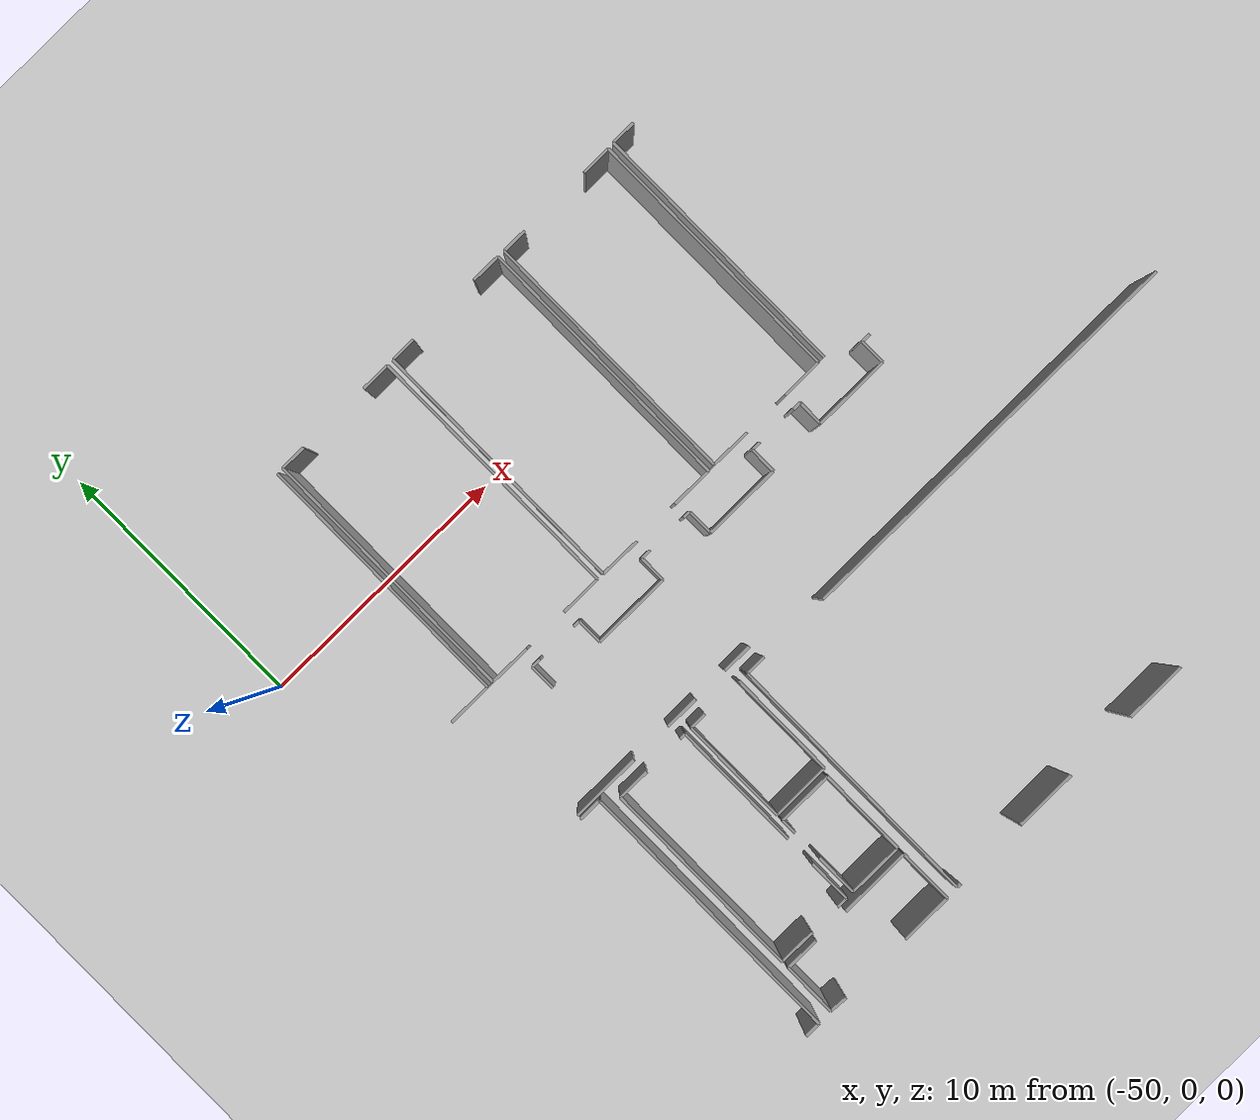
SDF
<sdf version="1.6">
 <world name="default">
  <model name="ground_plane">
   <static>1</static>
   <link name="link">
    <collision name="collision">
     <geometry><plane><normal>0 0 1</normal><size>100 100</size></plane></geometry>
     <surface><friction><ode><mu>100</mu><mu2>50</mu2></ode></friction></surface>
    </collision>
    <visual name="visual">
     <cast_shadows>0</cast_shadows>
     <geometry><plane><normal>0 0 1</normal><size>100 100</size></plane></geometry>
     <material>
      <script><uri>file://media/materials/scripts/gazebo.material</uri><name>Gazebo/Grey</name></script>
     </material>
    </visual>
   </link>
  </model>
  <model name="50055640">
   <static>1</static>
   <link name="Wall_51">
    <collision name="Wall_51_Collision">
     <geometry><box><size>0.990151784355 0.1 2.5</size></box></geometry>
     <pose>0.495075892177 0 1.25 0 0 0</pose>
    </collision>
    <visual name="Wall_51_Visual">
     <pose>0.495075892177 0 1.25 0 0 0</pose>
     <geometry><box><size>0.990151784355 0.1 2.5</size></box></geometry>
     <material>
      <script><uri>file://media/materials/scripts/gazebo.material</uri><name>Gazebo/Grey</name></script>
      <ambient>1 1 1 1</ambient>
     </material>
    </visual>
    <pose>27.3272754962 -27.5340626428 0 0 0 1.57079632679</pose>
   </link>
   <link name="Wall_52">
    <collision name="Wall_52_Collision">
     <geometry><box><size>0.367150616783 0.1 2.5</size></box></geometry>
     <pose>0.183575308391 0 1.25 0 0 0</pose>
    </collision>
    <visual name="Wall_52_Visual">
     <pose>0.183575308391 0 1.25 0 0 0</pose>
     <geometry><box><size>0.367150616783 0.1 2.5</size></box></geometry>
     <material>
      <script><uri>file://media/materials/scripts/gazebo.material</uri><name>Gazebo/Grey</name></script>
      <ambient>1 1 1 1</ambient>
     </material>
    </visual>
    <pose>27.3272754962 -26.5439108584 0 0 0 0.0</pose>
   </link>
   <link name="Wall_53">
    <collision name="Wall_53_Collision">
     <geometry><box><size>0.267018630387 0.1 2.5</size></box></geometry>
     <pose>0.133509315194 0 1.25 0 0 0</pose>
    </collision>
    <visual name="Wall_53_Visual">
     <pose>0.133509315194 0 1.25 0 0 0</pose>
     <geometry><box><size>0.267018630387 0.1 2.5</size></box></geometry>
     <material>
      <script><uri>file://media/materials/scripts/gazebo.material</uri><name>Gazebo/Grey</name></script>
      <ambient>1 1 1 1</ambient>
     </material>
    </visual>
    <pose>29.2631605665 -26.5439108584 0 0 0 0.0</pose>
   </link>
   <link name="Wall_54">
    <collision name="Wall_54_Collision">
     <geometry><box><size>0.984694654551 0.1 2.5</size></box></geometry>
     <pose>0.492347327275 0 1.25 0 0 0</pose>
    </collision>
    <visual name="Wall_54_Visual">
     <pose>0.492347327275 0 1.25 0 0 0</pose>
     <geometry><box><size>0.984694654551 0.1 2.5</size></box></geometry>
     <material>
      <script><uri>file://media/materials/scripts/gazebo.material</uri><name>Gazebo/Grey</name></script>
      <ambient>1 1 1 1</ambient>
     </material>
    </visual>
    <pose>29.5301791969 -26.5439108584 0 0 0 -1.57079632679</pose>
   </link>
   <link name="Wall_55">
    <collision name="Wall_55_Collision">
     <geometry><box><size>2.94570790395 0.1 2.5</size></box></geometry>
     <pose>1.47285395198 0 1.25 0 0 0</pose>
    </collision>
    <visual name="Wall_55_Visual">
     <pose>1.47285395198 0 1.25 0 0 0</pose>
     <geometry><box><size>2.94570790395 0.1 2.5</size></box></geometry>
     <material>
      <script><uri>file://media/materials/scripts/gazebo.material</uri><name>Gazebo/Grey</name></script>
      <ambient>1 1 1 1</ambient>
     </material>
    </visual>
    <pose>29.5301791969 -27.528605513 0 0 0 0.0</pose>
   </link>
   <link name="Wall_56">
    <collision name="Wall_56_Collision">
     <geometry><box><size>1.00131986395 0.1 2.5</size></box></geometry>
     <pose>0.500659931976 0 1.25 0 0 0</pose>
    </collision>
    <visual name="Wall_56_Visual">
     <pose>0.500659931976 0 1.25 0 0 0</pose>
     <geometry><box><size>1.00131986395 0.1 2.5</size></box></geometry>
     <material>
      <script><uri>file://media/materials/scripts/gazebo.material</uri><name>Gazebo/Grey</name></script>
      <ambient>1 1 1 1</ambient>
     </material>
    </visual>
    <pose>32.4758871009 -27.528605513 0 0 0 1.57079632679</pose>
   </link>
   <link name="Wall_57">
    <collision name="Wall_57_Collision">
     <geometry><box><size>0.383775826184 0.1 2.5</size></box></geometry>
     <pose>0.191887913092 0 1.25 0 0 0</pose>
    </collision>
    <visual name="Wall_57_Visual">
     <pose>0.191887913092 0 1.25 0 0 0</pose>
     <geometry><box><size>0.383775826184 0.1 2.5</size></box></geometry>
     <material>
      <script><uri>file://media/materials/scripts/gazebo.material</uri><name>Gazebo/Grey</name></script>
      <ambient>1 1 1 1</ambient>
     </material>
    </visual>
    <pose>32.4758871009 -26.527285649 0 0 0 0.0</pose>
   </link>
   <link name="Wall_58">
    <collision name="Wall_58_Collision">
     <geometry><box><size>0.286816589675 0.1 2.5</size></box></geometry>
     <pose>0.143408294837 0 1.25 0 0 0</pose>
    </collision>
    <visual name="Wall_58_Visual">
     <pose>0.143408294837 0 1.25 0 0 0</pose>
     <geometry><box><size>0.286816589675 0.1 2.5</size></box></geometry>
     <material>
      <script><uri>file://media/materials/scripts/gazebo.material</uri><name>Gazebo/Grey</name></script>
      <ambient>1 1 1 1</ambient>
     </material>
    </visual>
    <pose>34.4214173308 -26.527285649 0 0 0 0.0</pose>
   </link>
   <link name="Wall_59">
    <collision name="Wall_59_Collision">
     <geometry><box><size>0.995735824154 0.1 2.5</size></box></geometry>
     <pose>0.497867912077 0 1.25 0 0 0</pose>
    </collision>
    <visual name="Wall_59_Visual">
     <pose>0.497867912077 0 1.25 0 0 0</pose>
     <geometry><box><size>0.995735824154 0.1 2.5</size></box></geometry>
     <material>
      <script><uri>file://media/materials/scripts/gazebo.material</uri><name>Gazebo/Grey</name></script>
      <ambient>1 1 1 1</ambient>
     </material>
    </visual>
    <pose>34.7082339205 -26.527285649 0 0 0 -1.57079632679</pose>
   </link>
   <link name="Wall_60">
    <collision name="Wall_60_Collision">
     <geometry><box><size>2.93555510432 0.1 2.5</size></box></geometry>
     <pose>1.46777755216 0 1.25 0 0 0</pose>
    </collision>
    <visual name="Wall_60_Visual">
     <pose>1.46777755216 0 1.25 0 0 0</pose>
     <geometry><box><size>2.93555510432 0.1 2.5</size></box></geometry>
     <material>
      <script><uri>file://media/materials/scripts/gazebo.material</uri><name>Gazebo/Grey</name></script>
      <ambient>1 1 1 1</ambient>
     </material>
    </visual>
    <pose>34.7082339205 -27.5230214732 0 0 0 0.0</pose>
   </link>
   <link name="Wall_61">
    <collision name="Wall_61_Collision">
     <geometry><box><size>1.00423879385 0.1 2.5</size></box></geometry>
     <pose>0.502119396924 0 1.25 0 0 0</pose>
    </collision>
    <visual name="Wall_61_Visual">
     <pose>0.502119396924 0 1.25 0 0 0</pose>
     <geometry><box><size>1.00423879385 0.1 2.5</size></box></geometry>
     <material>
      <script><uri>file://media/materials/scripts/gazebo.material</uri><name>Gazebo/Grey</name></script>
      <ambient>1 1 1 1</ambient>
     </material>
    </visual>
    <pose>37.6437890248 -27.5230214732 0 0 0 1.57079632679</pose>
   </link>
   <link name="Wall_62">
    <collision name="Wall_62_Collision">
     <geometry><box><size>0.353190517285 0.1 2.5</size></box></geometry>
     <pose>0.176595258643 0 1.25 0 0 0</pose>
    </collision>
    <visual name="Wall_62_Visual">
     <pose>0.176595258643 0 1.25 0 0 0</pose>
     <geometry><box><size>0.353190517285 0.1 2.5</size></box></geometry>
     <material>
      <script><uri>file://media/materials/scripts/gazebo.material</uri><name>Gazebo/Grey</name></script>
      <ambient>1 1 1 1</ambient>
     </material>
    </visual>
    <pose>37.6437890248 -26.5187826793 0 0 0 0.0</pose>
   </link>
   <link name="Wall_63">
    <collision name="Wall_63_Collision">
     <geometry><box><size>0.304583989035 0.1 2.5</size></box></geometry>
     <pose>0.152291994517 0 1.25 0 0 0</pose>
    </collision>
    <visual name="Wall_63_Visual">
     <pose>0.152291994517 0 1.25 0 0 0</pose>
     <geometry><box><size>0.304583989035 0.1 2.5</size></box></geometry>
     <material>
      <script><uri>file://media/materials/scripts/gazebo.material</uri><name>Gazebo/Grey</name></script>
      <ambient>1 1 1 1</ambient>
     </material>
    </visual>
    <pose>39.5761206153 -26.5187826793 0 0 0 0.0</pose>
   </link>
   <link name="Wall_64">
    <collision name="Wall_64_Collision">
     <geometry><box><size>0.974414944921 0.1 2.5</size></box></geometry>
     <pose>0.487207472461 0 1.25 0 0 0</pose>
    </collision>
    <visual name="Wall_64_Visual">
     <pose>0.487207472461 0 1.25 0 0 0</pose>
     <geometry><box><size>0.974414944921 0.1 2.5</size></box></geometry>
     <material>
      <script><uri>file://media/materials/scripts/gazebo.material</uri><name>Gazebo/Grey</name></script>
      <ambient>1 1 1 1</ambient>
     </material>
    </visual>
    <pose>39.8807046043 -26.5187826793 0 0 0 -1.57079632679</pose>
   </link>
   <link name="Wall_65">
    <collision name="Wall_65_Collision">
     <geometry><box><size>2.90623889538 0.1 2.5</size></box></geometry>
     <pose>1.45311944769 0 1.25 0 0 0</pose>
    </collision>
    <visual name="Wall_65_Visual">
     <pose>1.45311944769 0 1.25 0 0 0</pose>
     <geometry><box><size>2.90623889538 0.1 2.5</size></box></geometry>
     <material>
      <script><uri>file://media/materials/scripts/gazebo.material</uri><name>Gazebo/Grey</name></script>
      <ambient>1 1 1 1</ambient>
     </material>
    </visual>
    <pose>39.8807046043 -27.4931976242 0 0 0 0.0</pose>
   </link>
   <link name="Wall_66">
    <collision name="Wall_66_Collision">
     <geometry><box><size>0.977206964821 0.1 2.5</size></box></geometry>
     <pose>0.48860348241 0 1.25 0 0 0</pose>
    </collision>
    <visual name="Wall_66_Visual">
     <pose>0.48860348241 0 1.25 0 0 0</pose>
     <geometry><box><size>0.977206964821 0.1 2.5</size></box></geometry>
     <material>
      <script><uri>file://media/materials/scripts/gazebo.material</uri><name>Gazebo/Grey</name></script>
      <ambient>1 1 1 1</ambient>
     </material>
    </visual>
    <pose>42.7869434997 -27.4931976242 0 0 0 1.57079632679</pose>
   </link>
   <link name="Wall_67">
    <collision name="Wall_67_Collision">
     <geometry><box><size>0.355347987207 0.1 2.5</size></box></geometry>
     <pose>0.177673993604 0 1.25 0 0 0</pose>
    </collision>
    <visual name="Wall_67_Visual">
     <pose>0.177673993604 0 1.25 0 0 0</pose>
     <geometry><box><size>0.355347987207 0.1 2.5</size></box></geometry>
     <material>
      <script><uri>file://media/materials/scripts/gazebo.material</uri><name>Gazebo/Grey</name></script>
      <ambient>1 1 1 1</ambient>
     </material>
    </visual>
    <pose>42.7869434997 -26.5159906594 0 0 0 0.0</pose>
   </link>
   <link name="Wall_77">
    <collision name="Wall_77_Collision">
     <geometry><box><size>1.14218995888 0.1 2.5</size></box></geometry>
     <pose>0.571094979441 0 1.25 0 0 0</pose>
    </collision>
    <visual name="Wall_77_Visual">
     <pose>0.571094979441 0 1.25 0 0 0</pose>
     <geometry><box><size>1.14218995888 0.1 2.5</size></box></geometry>
     <material>
      <script><uri>file://media/materials/scripts/gazebo.material</uri><name>Gazebo/Grey</name></script>
      <ambient>1 1 1 1</ambient>
     </material>
    </visual>
    <pose>32.9768008528 -31.1334839332 0 0 0 3.14159265359</pose>
   </link>
   <link name="Wall_78">
    <collision name="Wall_78_Collision">
     <geometry><box><size>1.29118229352 0.1 2.5</size></box></geometry>
     <pose>0.645591146759 0 1.25 0 0 0</pose>
    </collision>
    <visual name="Wall_78_Visual">
     <pose>0.645591146759 0 1.25 0 0 0</pose>
     <geometry><box><size>1.29118229352 0.1 2.5</size></box></geometry>
     <material>
      <script><uri>file://media/materials/scripts/gazebo.material</uri><name>Gazebo/Grey</name></script>
      <ambient>1 1 1 1</ambient>
     </material>
    </visual>
    <pose>30.4595410935 -31.1334839332 0 0 0 3.14159265359</pose>
   </link>
   <link name="Wall_79">
    <collision name="Wall_79_Collision">
     <geometry><box><size>2.62932128534 0.1 2.5</size></box></geometry>
     <pose>1.31466064267 0 1.25 0 0 0</pose>
    </collision>
    <visual name="Wall_79_Visual">
     <pose>1.31466064267 0 1.25 0 0 0</pose>
     <geometry><box><size>2.62932128534 0.1 2.5</size></box></geometry>
     <material>
      <script><uri>file://media/materials/scripts/gazebo.material</uri><name>Gazebo/Grey</name></script>
      <ambient>1 1 1 1</ambient>
     </material>
    </visual>
    <pose>27.5696735875 -31.1334839332 0 0 0 3.14159265359</pose>
   </link>
   <link name="Wall_91">
    <collision name="Wall_91_Collision">
     <geometry><box><size>9.99809635007 0.1 2.5</size></box></geometry>
     <pose>4.99904817503 0 1.25 0 0 0</pose>
    </collision>
    <visual name="Wall_91_Visual">
     <pose>4.99904817503 0 1.25 0 0 0</pose>
     <geometry><box><size>9.99809635007 0.1 2.5</size></box></geometry>
     <material>
      <script><uri>file://media/materials/scripts/gazebo.material</uri><name>Gazebo/Grey</name></script>
      <ambient>1 1 1 1</ambient>
     </material>
    </visual>
    <pose>25.7954718514 -15.9747195289 0 0 0 -1.57079632679</pose>
   </link>
   <link name="Wall_92">
    <collision name="Wall_92_Collision">
     <geometry><box><size>1.67571957967 0.1 2.5</size></box></geometry>
     <pose>0.837859789837 0 1.25 0 0 0</pose>
    </collision>
    <visual name="Wall_92_Visual">
     <pose>0.837859789837 0 1.25 0 0 0</pose>
     <geometry><box><size>1.67571957967 0.1 2.5</size></box></geometry>
     <material>
      <script><uri>file://media/materials/scripts/gazebo.material</uri><name>Gazebo/Grey</name></script>
      <ambient>1 1 1 1</ambient>
     </material>
    </visual>
    <pose>25.7954718514 -25.972815879 0 0 0 3.14159265359</pose>
   </link>
   <link name="Wall_94">
    <collision name="Wall_94_Collision">
     <geometry><box><size>9.99847708005 0.1 2.5</size></box></geometry>
     <pose>4.99923854003 0 1.25 0 0 0</pose>
    </collision>
    <visual name="Wall_94_Visual">
     <pose>4.99923854003 0 1.25 0 0 0</pose>
     <geometry><box><size>9.99847708005 0.1 2.5</size></box></geometry>
     <material>
      <script><uri>file://media/materials/scripts/gazebo.material</uri><name>Gazebo/Grey</name></script>
      <ambient>1 1 1 1</ambient>
     </material>
    </visual>
    <pose>26.0453576324 -25.9773846388 0 0 0 1.57079632679</pose>
   </link>
   <link name="Wall_95">
    <collision name="Wall_95_Collision">
     <geometry><box><size>0.984313924565 0.1 2.5</size></box></geometry>
     <pose>0.492156962282 0 1.25 0 0 0</pose>
    </collision>
    <visual name="Wall_95_Visual">
     <pose>0.492156962282 0 1.25 0 0 0</pose>
     <geometry><box><size>0.984313924565 0.1 2.5</size></box></geometry>
     <material>
      <script><uri>file://media/materials/scripts/gazebo.material</uri><name>Gazebo/Grey</name></script>
      <ambient>1 1 1 1</ambient>
     </material>
    </visual>
    <pose>26.0453576324 -15.9789075588 0 0 0 0.0</pose>
   </link>
   <link name="Wall_96">
    <collision name="Wall_96_Collision">
     <geometry><box><size>1.11173155998 0.1 2.5</size></box></geometry>
     <pose>0.555865779989 0 1.25 0 0 0</pose>
    </collision>
    <visual name="Wall_96_Visual">
     <pose>0.555865779989 0 1.25 0 0 0</pose>
     <geometry><box><size>1.11173155998 0.1 2.5</size></box></geometry>
     <material>
      <script><uri>file://media/materials/scripts/gazebo.material</uri><name>Gazebo/Grey</name></script>
      <ambient>1 1 1 1</ambient>
     </material>
    </visual>
    <pose>29.8301944261 -15.9789075588 0 0 0 0.0</pose>
   </link>
   <link name="Wall_97">
    <collision name="Wall_97_Collision">
     <geometry><box><size>10.0 0.1 2.5</size></box></geometry>
     <pose>5.0 0 1.25 0 0 0</pose>
    </collision>
    <visual name="Wall_97_Visual">
     <pose>5.0 0 1.25 0 0 0</pose>
     <geometry><box><size>10.0 0.1 2.5</size></box></geometry>
     <material>
      <script><uri>file://media/materials/scripts/gazebo.material</uri><name>Gazebo/Grey</name></script>
      <ambient>1 1 1 1</ambient>
     </material>
    </visual>
    <pose>30.9419259861 -15.9789075588 0 0 0 -1.57079632679</pose>
   </link>
   <link name="Wall_98">
    <collision name="Wall_98_Collision">
     <geometry><box><size>1.55540890401 0.1 2.5</size></box></geometry>
     <pose>0.777704452003 0 1.25 0 0 0</pose>
    </collision>
    <visual name="Wall_98_Visual">
     <pose>0.777704452003 0 1.25 0 0 0</pose>
     <geometry><box><size>1.55540890401 0.1 2.5</size></box></geometry>
     <material>
      <script><uri>file://media/materials/scripts/gazebo.material</uri><name>Gazebo/Grey</name></script>
      <ambient>1 1 1 1</ambient>
     </material>
    </visual>
    <pose>30.9419259861 -25.9789075588 0 0 0 3.14159265359</pose>
   </link>
   <link name="Wall_99">
    <collision name="Wall_99_Collision">
     <geometry><box><size>1.5819338261 0.1 2.5</size></box></geometry>
     <pose>0.790966913052 0 1.25 0 0 0</pose>
    </collision>
    <visual name="Wall_99_Visual">
     <pose>0.790966913052 0 1.25 0 0 0</pose>
     <geometry><box><size>1.5819338261 0.1 2.5</size></box></geometry>
     <material>
      <script><uri>file://media/materials/scripts/gazebo.material</uri><name>Gazebo/Grey</name></script>
      <ambient>1 1 1 1</ambient>
     </material>
    </visual>
    <pose>27.6272907254 -25.9789075588 0 0 0 3.14062995834</pose>
   </link>
   <link name="Wall_100">
    <collision name="Wall_100_Collision">
     <geometry><box><size>10.0081222397 0.1 2.5</size></box></geometry>
     <pose>5.00406111985 0 1.25 0 0 0</pose>
    </collision>
    <visual name="Wall_100_Visual">
     <pose>5.00406111985 0 1.25 0 0 0</pose>
     <geometry><box><size>10.0081222397 0.1 2.5</size></box></geometry>
     <material>
      <script><uri>file://media/materials/scripts/gazebo.material</uri><name>Gazebo/Grey</name></script>
      <ambient>1 1 1 1</ambient>
     </material>
    </visual>
    <pose>31.1970150769 -25.9828417686 0 0 0 1.57079632679</pose>
   </link>
   <link name="Wall_101">
    <collision name="Wall_101_Collision">
     <geometry><box><size>0.976572414843 0.1 2.5</size></box></geometry>
     <pose>0.488286207422 0 1.25 0 0 0</pose>
    </collision>
    <visual name="Wall_101_Visual">
     <pose>0.488286207422 0 1.25 0 0 0</pose>
     <geometry><box><size>0.976572414843 0.1 2.5</size></box></geometry>
     <material>
      <script><uri>file://media/materials/scripts/gazebo.material</uri><name>Gazebo/Grey</name></script>
      <ambient>1 1 1 1</ambient>
     </material>
    </visual>
    <pose>31.1970150769 -15.9747195289 0 0 0 0.0</pose>
   </link>
   <link name="Wall_102">
    <collision name="Wall_102_Collision">
     <geometry><box><size>1.12467637951 0.1 2.5</size></box></geometry>
     <pose>0.562338189756 0 1.25 0 0 0</pose>
    </collision>
    <visual name="Wall_102_Visual">
     <pose>0.562338189756 0 1.25 0 0 0</pose>
     <geometry><box><size>1.12467637951 0.1 2.5</size></box></geometry>
     <material>
      <script><uri>file://media/materials/scripts/gazebo.material</uri><name>Gazebo/Grey</name></script>
      <ambient>1 1 1 1</ambient>
     </material>
    </visual>
    <pose>34.9889588304 -15.9747195289 0 0 0 0.0</pose>
   </link>
   <link name="Wall_103">
    <collision name="Wall_103_Collision">
     <geometry><box><size>10.026904919 0.1 2.5</size></box></geometry>
     <pose>5.01345245952 0 1.25 0 0 0</pose>
    </collision>
    <visual name="Wall_103_Visual">
     <pose>5.01345245952 0 1.25 0 0 0</pose>
     <geometry><box><size>10.026904919 0.1 2.5</size></box></geometry>
     <material>
      <script><uri>file://media/materials/scripts/gazebo.material</uri><name>Gazebo/Grey</name></script>
      <ambient>1 1 1 1</ambient>
     </material>
    </visual>
    <pose>36.1136352099 -15.9747195289 0 0 0 -1.57079632679</pose>
   </link>
   <link name="Wall_104">
    <collision name="Wall_104_Collision">
     <geometry><box><size>1.58497893294 0.1 2.5</size></box></geometry>
     <pose>0.79248946647 0 1.25 0 0 0</pose>
    </collision>
    <visual name="Wall_104_Visual">
     <pose>0.79248946647 0 1.25 0 0 0</pose>
     <geometry><box><size>1.58497893294 0.1 2.5</size></box></geometry>
     <material>
      <script><uri>file://media/materials/scripts/gazebo.material</uri><name>Gazebo/Grey</name></script>
      <ambient>1 1 1 1</ambient>
     </material>
    </visual>
    <pose>36.1136352099 -26.0016244479 0 0 0 3.14159265359</pose>
   </link>
   <link name="Wall_105">
    <collision name="Wall_105_Collision">
     <geometry><box><size>1.5619942469 0.1 2.5</size></box></geometry>
     <pose>0.780997123451 0 1.25 0 0 0</pose>
    </collision>
    <visual name="Wall_105_Visual">
     <pose>0.780997123451 0 1.25 0 0 0</pose>
     <geometry><box><size>1.5619942469 0.1 2.5</size></box></geometry>
     <material>
      <script><uri>file://media/materials/scripts/gazebo.material</uri><name>Gazebo/Grey</name></script>
      <ambient>1 1 1 1</ambient>
     </material>
    </visual>
    <pose>32.7588963907 -26.0016244479 0 0 0 3.1295675568</pose>
   </link>
   <link name="Wall_106">
    <collision name="Wall_106_Collision">
     <geometry><box><size>9.99479669019 0.1 2.5</size></box></geometry>
     <pose>4.99739834509 0 1.25 0 0 0</pose>
    </collision>
    <visual name="Wall_106_Visual">
     <pose>4.99739834509 0 1.25 0 0 0</pose>
     <geometry><box><size>9.99479669019 0.1 2.5</size></box></geometry>
     <material>
      <script><uri>file://media/materials/scripts/gazebo.material</uri><name>Gazebo/Grey</name></script>
      <ambient>1 1 1 1</ambient>
     </material>
    </visual>
    <pose>36.3906797299 -25.9829686786 0 0 0 1.57079632679</pose>
   </link>
   <link name="Wall_107">
    <collision name="Wall_107_Collision">
     <geometry><box><size>0.950048225798 0.1 2.5</size></box></geometry>
     <pose>0.475024112899 0 1.25 0 0 0</pose>
    </collision>
    <visual name="Wall_107_Visual">
     <pose>0.475024112899 0 1.25 0 0 0</pose>
     <geometry><box><size>0.950048225798 0.1 2.5</size></box></geometry>
     <material>
      <script><uri>file://media/materials/scripts/gazebo.material</uri><name>Gazebo/Grey</name></script>
      <ambient>1 1 1 1</ambient>
     </material>
    </visual>
    <pose>36.3906797299 -15.9881719884 0 0 0 0.0</pose>
   </link>
   <link name="Wall_108">
    <collision name="Wall_108_Collision">
     <geometry><box><size>1.12645311945 0.1 2.5</size></box></geometry>
     <pose>0.563226559724 0 1.25 0 0 0</pose>
    </collision>
    <visual name="Wall_108_Visual">
     <pose>0.563226559724 0 1.25 0 0 0</pose>
     <geometry><box><size>1.12645311945 0.1 2.5</size></box></geometry>
     <material>
      <script><uri>file://media/materials/scripts/gazebo.material</uri><name>Gazebo/Grey</name></script>
      <ambient>1 1 1 1</ambient>
     </material>
    </visual>
    <pose>40.1361744251 -15.9881719884 0 0 0 0.0</pose>
   </link>
   <link name="Wall_109">
    <collision name="Wall_109_Collision">
     <geometry><box><size>10.0 0.1 2.5</size></box></geometry>
     <pose>5.0 0 1.25 0 0 0</pose>
    </collision>
    <visual name="Wall_109_Visual">
     <pose>5.0 0 1.25 0 0 0</pose>
     <geometry><box><size>10.0 0.1 2.5</size></box></geometry>
     <material>
      <script><uri>file://media/materials/scripts/gazebo.material</uri><name>Gazebo/Grey</name></script>
      <ambient>1 1 1 1</ambient>
     </material>
    </visual>
    <pose>41.2626275445 -15.9881719884 0 0 0 -1.57079632679</pose>
   </link>
   <link name="Wall_110">
    <collision name="Wall_110_Collision">
     <geometry><box><size>1.56315041373 0.1 2.5</size></box></geometry>
     <pose>0.781575206863 0 1.25 0 0 0</pose>
    </collision>
    <visual name="Wall_110_Visual">
     <pose>0.781575206863 0 1.25 0 0 0</pose>
     <geometry><box><size>1.56315041373 0.1 2.5</size></box></geometry>
     <material>
      <script><uri>file://media/materials/scripts/gazebo.material</uri><name>Gazebo/Grey</name></script>
      <ambient>1 1 1 1</ambient>
     </material>
    </visual>
    <pose>41.2626275445 -25.9881719884 0 0 0 3.14159265359</pose>
   </link>
   <link name="Wall_111">
    <collision name="Wall_111_Collision">
     <geometry><box><size>1.54285358862 0.1 2.5</size></box></geometry>
     <pose>0.771426794312 0 1.25 0 0 0</pose>
    </collision>
    <visual name="Wall_111_Visual">
     <pose>0.771426794312 0 1.25 0 0 0</pose>
     <geometry><box><size>1.54285358862 0.1 2.5</size></box></geometry>
     <material>
      <script><uri>file://media/materials/scripts/gazebo.material</uri><name>Gazebo/Grey</name></script>
      <ambient>1 1 1 1</ambient>
     </material>
    </visual>
    <pose>37.9335245444 -25.9881719884 0 0 0 3.13822012381</pose>
   </link>
   <link name="Wall_112">
    <collision name="Wall_112_Collision">
     <geometry><box><size>10.0468297883 0.1 2.5</size></box></geometry>
     <pose>5.02341489416 0 1.25 0 0 0</pose>
    </collision>
    <visual name="Wall_112_Visual">
     <pose>5.02341489416 0 1.25 0 0 0</pose>
     <geometry><box><size>10.0468297883 0.1 2.5</size></box></geometry>
     <material>
      <script><uri>file://media/materials/scripts/gazebo.material</uri><name>Gazebo/Grey</name></script>
      <ambient>1 1 1 1</ambient>
     </material>
    </visual>
    <pose>41.5212701152 -26.0098735976 0 0 0 1.57079632679</pose>
   </link>
   <link name="Wall_113">
    <collision name="Wall_113_Collision">
     <geometry><box><size>0.951317325753 0.1 2.5</size></box></geometry>
     <pose>0.475658662876 0 1.25 0 0 0</pose>
    </collision>
    <visual name="Wall_113_Visual">
     <pose>0.475658662876 0 1.25 0 0 0</pose>
     <geometry><box><size>0.951317325753 0.1 2.5</size></box></geometry>
     <material>
      <script><uri>file://media/materials/scripts/gazebo.material</uri><name>Gazebo/Grey</name></script>
      <ambient>1 1 1 1</ambient>
     </material>
    </visual>
    <pose>41.5212701152 -15.9630438093 0 0 0 0.0</pose>
   </link>
   <link name="Wall_124">
    <collision name="Wall_124_Collision">
     <geometry><box><size>9.98299406061 0.1 2.5</size></box></geometry>
     <pose>4.99149703031 0 1.25 0 0 0</pose>
    </collision>
    <visual name="Wall_124_Visual">
     <pose>4.99149703031 0 1.25 0 0 0</pose>
     <geometry><box><size>9.98299406061 0.1 2.5</size></box></geometry>
     <material>
      <script><uri>file://media/materials/scripts/gazebo.material</uri><name>Gazebo/Grey</name></script>
      <ambient>1 1 1 1</ambient>
     </material>
    </visual>
    <pose>32.2914868775 -41.7148586223 0 0 0 1.57079632679</pose>
   </link>
   <link name="Wall_125">
    <collision name="Wall_125_Collision">
     <geometry><box><size>0.789126351591 0.1 2.5</size></box></geometry>
     <pose>0.394563175796 0 1.25 0 0 0</pose>
    </collision>
    <visual name="Wall_125_Visual">
     <pose>0.394563175796 0 1.25 0 0 0</pose>
     <geometry><box><size>0.789126351591 0.1 2.5</size></box></geometry>
     <material>
      <script><uri>file://media/materials/scripts/gazebo.material</uri><name>Gazebo/Grey</name></script>
      <ambient>1 1 1 1</ambient>
     </material>
    </visual>
    <pose>32.2914868775 -31.7318645617 0 0 0 0.0</pose>
   </link>
   <link name="Wall_126">
    <collision name="Wall_126_Collision">
     <geometry><box><size>15.5875932788 0.1 2.5</size></box></geometry>
     <pose>7.79379663942 0 1.25 0 0 0</pose>
    </collision>
    <visual name="Wall_126_Visual">
     <pose>7.79379663942 0 1.25 0 0 0</pose>
     <geometry><box><size>15.5875932788 0.1 2.5</size></box></geometry>
     <material>
      <script><uri>file://media/materials/scripts/gazebo.material</uri><name>Gazebo/Grey</name></script>
      <ambient>1 1 1 1</ambient>
     </material>
    </visual>
    <pose>35.8303721001 -31.7318645617 0 0 0 0.0</pose>
   </link>
   <link name="Wall_130">
    <collision name="Wall_130_Collision">
     <geometry><box><size>2.34834255546 0.1 2.5</size></box></geometry>
     <pose>1.17417127773 0 1.25 0 0 0</pose>
    </collision>
    <visual name="Wall_130_Visual">
     <pose>1.17417127773 0 1.25 0 0 0</pose>
     <geometry><box><size>2.34834255546 0.1 2.5</size></box></geometry>
     <material>
      <script><uri>file://media/materials/scripts/gazebo.material</uri><name>Gazebo/Grey</name></script>
      <ambient>1 1 1 1</ambient>
     </material>
    </visual>
    <pose>42.7470937611 -41.7194273821 0 0 0 3.14159265359</pose>
   </link>
   <link name="Wall_131">
    <collision name="Wall_131_Collision">
     <geometry><box><size>2.35938372506 0.1 2.5</size></box></geometry>
     <pose>1.17969186253 0 1.25 0 0 0</pose>
    </collision>
    <visual name="Wall_131_Visual">
     <pose>1.17969186253 0 1.25 0 0 0</pose>
     <geometry><box><size>2.35938372506 0.1 2.5</size></box></geometry>
     <material>
      <script><uri>file://media/materials/scripts/gazebo.material</uri><name>Gazebo/Grey</name></script>
      <ambient>1 1 1 1</ambient>
     </material>
    </visual>
    <pose>37.6060967562 -41.7194273821 0 0 0 3.14159265359</pose>
   </link>
   <link name="Wall_132">
    <collision name="Wall_132_Collision">
     <geometry><box><size>0.162635889507 0.1 2.5</size></box></geometry>
     <pose>0.0813179447536 0 1.25 0 0 0</pose>
    </collision>
    <visual name="Wall_132_Visual">
     <pose>0.0813179447536 0 1.25 0 0 0</pose>
     <geometry><box><size>0.162635889507 0.1 2.5</size></box></geometry>
     <material>
      <script><uri>file://media/materials/scripts/gazebo.material</uri><name>Gazebo/Grey</name></script>
      <ambient>1 1 1 1</ambient>
     </material>
    </visual>
    <pose>32.4540585817 -41.7194273821 0 0 0 3.11349700401</pose>
   </link>
   <link name="Wall_133">
    <collision name="Wall_133_Collision">
     <geometry><box><size>4.08523275293 0.1 2.5</size></box></geometry>
     <pose>2.04261637647 0 1.25 0 0 0</pose>
    </collision>
    <visual name="Wall_133_Visual">
     <pose>2.04261637647 0 1.25 0 0 0</pose>
     <geometry><box><size>4.08523275293 0.1 2.5</size></box></geometry>
     <material>
      <script><uri>file://media/materials/scripts/gazebo.material</uri><name>Gazebo/Grey</name></script>
      <ambient>1 1 1 1</ambient>
     </material>
    </visual>
    <pose>29.6847555713 -35.7912076755 0 0 0 1.57079632679</pose>
   </link>
   <link name="Wall_134">
    <collision name="Wall_134_Collision">
     <geometry><box><size>0.64584496675 0.1 2.5</size></box></geometry>
     <pose>0.322922483375 0 1.25 0 0 0</pose>
    </collision>
    <visual name="Wall_134_Visual">
     <pose>0.322922483375 0 1.25 0 0 0</pose>
     <geometry><box><size>0.64584496675 0.1 2.5</size></box></geometry>
     <material>
      <script><uri>file://media/materials/scripts/gazebo.material</uri><name>Gazebo/Grey</name></script>
      <ambient>1 1 1 1</ambient>
     </material>
    </visual>
    <pose>29.6847555713 -31.7059749226 0 0 0 0.0</pose>
   </link>
   <link name="Wall_135">
    <collision name="Wall_135_Collision">
     <geometry><box><size>4.07063810346 0.1 2.5</size></box></geometry>
     <pose>2.03531905173 0 1.25 0 0 0</pose>
    </collision>
    <visual name="Wall_135_Visual">
     <pose>2.03531905173 0 1.25 0 0 0</pose>
     <geometry><box><size>4.07063810346 0.1 2.5</size></box></geometry>
     <material>
      <script><uri>file://media/materials/scripts/gazebo.material</uri><name>Gazebo/Grey</name></script>
      <ambient>1 1 1 1</ambient>
     </material>
    </visual>
    <pose>31.916721661 -31.7059749226 0 0 0 -1.57079632679</pose>
   </link>
   <link name="Wall_136">
    <collision name="Wall_136_Collision">
     <geometry><box><size>2.23201380577 0.1 2.5</size></box></geometry>
     <pose>1.11600690288 0 1.25 0 0 0</pose>
    </collision>
    <visual name="Wall_136_Visual">
     <pose>1.11600690288 0 1.25 0 0 0</pose>
     <geometry><box><size>2.23201380577 0.1 2.5</size></box></geometry>
     <material>
      <script><uri>file://media/materials/scripts/gazebo.material</uri><name>Gazebo/Grey</name></script>
      <ambient>1 1 1 1</ambient>
     </material>
    </visual>
    <pose>31.916721661 -35.776613026 0 0 0 -3.13505382599</pose>
   </link>
   <link name="Wall_137">
    <collision name="Wall_137_Collision">
     <geometry><box><size>7.68427331337 0.1 2.5</size></box></geometry>
     <pose>3.84213665668 0 1.25 0 0 0</pose>
    </collision>
    <visual name="Wall_137_Visual">
     <pose>3.84213665668 0 1.25 0 0 0</pose>
     <geometry><box><size>7.68427331337 0.1 2.5</size></box></geometry>
     <material>
      <script><uri>file://media/materials/scripts/gazebo.material</uri><name>Gazebo/Grey</name></script>
      <ambient>1 1 1 1</ambient>
     </material>
    </visual>
    <pose>26.3759581705 -39.3974821057 0 0 0 1.57079632679</pose>
   </link>
   <link name="Wall_138">
    <collision name="Wall_138_Collision">
     <geometry><box><size>1.21909741611 0.1 2.5</size></box></geometry>
     <pose>0.609548708056 0 1.25 0 0 0</pose>
    </collision>
    <visual name="Wall_138_Visual">
     <pose>0.609548708056 0 1.25 0 0 0</pose>
     <geometry><box><size>1.21909741611 0.1 2.5</size></box></geometry>
     <material>
      <script><uri>file://media/materials/scripts/gazebo.material</uri><name>Gazebo/Grey</name></script>
      <ambient>1 1 1 1</ambient>
     </material>
    </visual>
    <pose>26.3759581705 -31.7132087923 0 0 0 0.0</pose>
   </link>
   <link name="Wall_139">
    <collision name="Wall_139_Collision">
     <geometry><box><size>0.233641301589 0.1 2.5</size></box></geometry>
     <pose>0.116820650794 0 1.25 0 0 0</pose>
    </collision>
    <visual name="Wall_139_Visual">
     <pose>0.116820650794 0 1.25 0 0 0</pose>
     <geometry><box><size>0.233641301589 0.1 2.5</size></box></geometry>
     <material>
      <script><uri>file://media/materials/scripts/gazebo.material</uri><name>Gazebo/Grey</name></script>
      <ambient>1 1 1 1</ambient>
     </material>
    </visual>
    <pose>29.1630285801 -31.7132087923 0 0 0 0.0</pose>
   </link>
   <link name="Wall_140">
    <collision name="Wall_140_Collision">
     <geometry><box><size>4.91179755318 0.1 2.5</size></box></geometry>
     <pose>2.45589877659 0 1.25 0 0 0</pose>
    </collision>
    <visual name="Wall_140_Visual">
     <pose>2.45589877659 0 1.25 0 0 0</pose>
     <geometry><box><size>4.91179755318 0.1 2.5</size></box></geometry>
     <material>
      <script><uri>file://media/materials/scripts/gazebo.material</uri><name>Gazebo/Grey</name></script>
      <ambient>1 1 1 1</ambient>
     </material>
    </visual>
    <pose>29.3966698817 -31.7132087923 0 0 0 -1.57079632679</pose>
   </link>
   <link name="Wall_141">
    <collision name="Wall_141_Collision">
     <geometry><box><size>1.61086857201 0.1 2.5</size></box></geometry>
     <pose>0.805434286004 0 1.25 0 0 0</pose>
    </collision>
    <visual name="Wall_141_Visual">
     <pose>0.805434286004 0 1.25 0 0 0</pose>
     <geometry><box><size>1.61086857201 0.1 2.5</size></box></geometry>
     <material>
      <script><uri>file://media/materials/scripts/gazebo.material</uri><name>Gazebo/Grey</name></script>
      <ambient>1 1 1 1</ambient>
     </material>
    </visual>
    <pose>29.3966698817 -37.7938474034 0 0 0 -1.57079632679</pose>
   </link>
   <link name="Wall_142">
    <collision name="Wall_142_Collision">
     <geometry><box><size>0.410934565206 0.1 2.5</size></box></geometry>
     <pose>0.205467282603 0 1.25 0 0 0</pose>
    </collision>
    <visual name="Wall_142_Visual">
     <pose>0.205467282603 0 1.25 0 0 0</pose>
     <geometry><box><size>0.410934565206 0.1 2.5</size></box></geometry>
     <material>
      <script><uri>file://media/materials/scripts/gazebo.material</uri><name>Gazebo/Grey</name></script>
      <ambient>1 1 1 1</ambient>
     </material>
    </visual>
    <pose>29.3966698817 -39.4047159754 0 0 0 3.14159265359</pose>
   </link>
   <link name="Wall_143">
    <collision name="Wall_143_Collision">
     <geometry><box><size>1.40453154815 0.1 2.5</size></box></geometry>
     <pose>0.702265774073 0 1.25 0 0 0</pose>
    </collision>
    <visual name="Wall_143_Visual">
     <pose>0.702265774073 0 1.25 0 0 0</pose>
     <geometry><box><size>1.40453154815 0.1 2.5</size></box></geometry>
     <material>
      <script><uri>file://media/materials/scripts/gazebo.material</uri><name>Gazebo/Grey</name></script>
      <ambient>1 1 1 1</ambient>
     </material>
    </visual>
    <pose>27.7804710899 -39.4047159754 0 0 0 3.13644225186</pose>
   </link>
   <link name="Wall_144">
    <collision name="Wall_144_Collision">
     <geometry><box><size>1.58688258287 0.1 2.5</size></box></geometry>
     <pose>0.793441291436 0 1.25 0 0 0</pose>
    </collision>
    <visual name="Wall_144_Visual">
     <pose>0.793441291436 0 1.25 0 0 0</pose>
     <geometry><box><size>1.58688258287 0.1 2.5</size></box></geometry>
     <material>
      <script><uri>file://media/materials/scripts/gazebo.material</uri><name>Gazebo/Grey</name></script>
      <ambient>1 1 1 1</ambient>
     </material>
    </visual>
    <pose>29.7013807808 -39.3998933956 0 0 0 1.57079632679</pose>
   </link>
   <link name="Wall_145">
    <collision name="Wall_145_Collision">
     <geometry><box><size>0.587720188842 0.1 2.5</size></box></geometry>
     <pose>0.293860094421 0 1.25 0 0 0</pose>
    </collision>
    <visual name="Wall_145_Visual">
     <pose>0.293860094421 0 1.25 0 0 0</pose>
     <geometry><box><size>0.587720188842 0.1 2.5</size></box></geometry>
     <material>
      <script><uri>file://media/materials/scripts/gazebo.material</uri><name>Gazebo/Grey</name></script>
      <ambient>1 1 1 1</ambient>
     </material>
    </visual>
    <pose>29.7013807808 -36.640108635 0 0 0 1.57079632679</pose>
   </link>
   <link name="Wall_146">
    <collision name="Wall_146_Collision">
     <geometry><box><size>2.08766942484 0.1 2.5</size></box></geometry>
     <pose>1.04383471242 0 1.25 0 0 0</pose>
    </collision>
    <visual name="Wall_146_Visual">
     <pose>1.04383471242 0 1.25 0 0 0</pose>
     <geometry><box><size>2.08766942484 0.1 2.5</size></box></geometry>
     <material>
      <script><uri>file://media/materials/scripts/gazebo.material</uri><name>Gazebo/Grey</name></script>
      <ambient>1 1 1 1</ambient>
     </material>
    </visual>
    <pose>29.7013807808 -36.0523884461 0 0 0 0.0</pose>
   </link>
   <link name="Wall_147">
    <collision name="Wall_147_Collision">
     <geometry><box><size>3.34077871973 0.1 2.5</size></box></geometry>
     <pose>1.67038935987 0 1.25 0 0 0</pose>
    </collision>
    <visual name="Wall_147_Visual">
     <pose>1.67038935987 0 1.25 0 0 0</pose>
     <geometry><box><size>3.34077871973 0.1 2.5</size></box></geometry>
     <material>
      <script><uri>file://media/materials/scripts/gazebo.material</uri><name>Gazebo/Grey</name></script>
      <ambient>1 1 1 1</ambient>
     </material>
    </visual>
    <pose>31.7890502056 -36.0523884461 0 0 0 -1.57079632679</pose>
   </link>
   <link name="Wall_148">
    <collision name="Wall_148_Collision">
     <geometry><box><size>2.08768026038 0.1 2.5</size></box></geometry>
     <pose>1.04384013019 0 1.25 0 0 0</pose>
    </collision>
    <visual name="Wall_148_Visual">
     <pose>1.04384013019 0 1.25 0 0 0</pose>
     <geometry><box><size>2.08768026038 0.1 2.5</size></box></geometry>
     <material>
      <script><uri>file://media/materials/scripts/gazebo.material</uri><name>Gazebo/Grey</name></script>
      <ambient>1 1 1 1</ambient>
     </material>
    </visual>
    <pose>31.7890502056 -39.3931671658 0 0 0 -3.13837078024</pose>
   </link>
   <link name="Wall_149">
    <collision name="Wall_149_Collision">
     <geometry><box><size>2.01824965734 0.1 2.5</size></box></geometry>
     <pose>1.00912482867 0 1.25 0 0 0</pose>
    </collision>
    <visual name="Wall_149_Visual">
     <pose>1.00912482867 0 1.25 0 0 0</pose>
     <geometry><box><size>2.01824965734 0.1 2.5</size></box></geometry>
     <material>
      <script><uri>file://media/materials/scripts/gazebo.material</uri><name>Gazebo/Grey</name></script>
      <ambient>1 1 1 1</ambient>
     </material>
    </visual>
    <pose>26.3843342302 -41.7059749226 0 0 0 1.57079632679</pose>
   </link>
   <link name="Wall_150">
    <collision name="Wall_150_Collision">
     <geometry><box><size>1.29054774354 0.1 2.5</size></box></geometry>
     <pose>0.64527387177 0 1.25 0 0 0</pose>
    </collision>
    <visual name="Wall_150_Visual">
     <pose>0.64527387177 0 1.25 0 0 0</pose>
     <geometry><box><size>1.29054774354 0.1 2.5</size></box></geometry>
     <material>
      <script><uri>file://media/materials/scripts/gazebo.material</uri><name>Gazebo/Grey</name></script>
      <ambient>1 1 1 1</ambient>
     </material>
    </visual>
    <pose>26.3843342302 -39.6877252652 0 0 0 0.0</pose>
   </link>
   <link name="Wall_151">
    <collision name="Wall_151_Collision">
     <geometry><box><size>2.72869181177 0.1 2.5</size></box></geometry>
     <pose>1.36434590588 0 1.25 0 0 0</pose>
    </collision>
    <visual name="Wall_151_Visual">
     <pose>1.36434590588 0 1.25 0 0 0</pose>
     <geometry><box><size>2.72869181177 0.1 2.5</size></box></geometry>
     <material>
      <script><uri>file://media/materials/scripts/gazebo.material</uri><name>Gazebo/Grey</name></script>
      <ambient>1 1 1 1</ambient>
     </material>
    </visual>
    <pose>29.0628965937 -39.6877252652 0 0 0 0.0</pose>
   </link>
   <link name="Wall_152">
    <collision name="Wall_152_Collision">
     <geometry><box><size>2.06000304584 0.1 2.5</size></box></geometry>
     <pose>1.03000152292 0 1.25 0 0 0</pose>
    </collision>
    <visual name="Wall_152_Visual">
     <pose>1.03000152292 0 1.25 0 0 0</pose>
     <geometry><box><size>2.06000304584 0.1 2.5</size></box></geometry>
     <material>
      <script><uri>file://media/materials/scripts/gazebo.material</uri><name>Gazebo/Grey</name></script>
      <ambient>1 1 1 1</ambient>
     </material>
    </visual>
    <pose>31.7915884055 -39.6877252652 0 0 0 -1.57079632679</pose>
   </link>
   <link name="Wall_153">
    <collision name="Wall_153_Collision">
     <geometry><box><size>1.94426113001 0.1 2.5</size></box></geometry>
     <pose>0.972130565003 0 1.25 0 0 0</pose>
    </collision>
    <visual name="Wall_153_Visual">
     <pose>0.972130565003 0 1.25 0 0 0</pose>
     <geometry><box><size>1.94426113001 0.1 2.5</size></box></geometry>
     <material>
      <script><uri>file://media/materials/scripts/gazebo.material</uri><name>Gazebo/Grey</name></script>
      <ambient>1 1 1 1</ambient>
     </material>
    </visual>
    <pose>31.7915884055 -41.7477283111 0 0 0 3.14159265359</pose>
   </link>
   <link name="Wall_154">
    <collision name="Wall_154_Collision">
     <geometry><box><size>0.677211012062 0.1 2.5</size></box></geometry>
     <pose>0.338605506031 0 1.25 0 0 0</pose>
    </collision>
    <visual name="Wall_154_Visual">
     <pose>0.338605506031 0 1.25 0 0 0</pose>
     <geometry><box><size>0.677211012062 0.1 2.5</size></box></geometry>
     <material>
      <script><uri>file://media/materials/scripts/gazebo.material</uri><name>Gazebo/Grey</name></script>
      <ambient>1 1 1 1</ambient>
     </material>
    </visual>
    <pose>27.0602568658 -41.7477283111 0 0 0 3.07989860821</pose>
   </link>
   <link name="Wall_157">
    <collision name="Wall_157_Collision">
     <geometry><box><size>0.884562668156 0.1 2.5</size></box></geometry>
     <pose>0.442281334078 0 1.25 0 0 0</pose>
    </collision>
    <visual name="Wall_157_Visual">
     <pose>0.442281334078 0 1.25 0 0 0</pose>
     <geometry><box><size>0.884562668156 0.1 2.5</size></box></geometry>
     <material>
      <script><uri>file://media/materials/scripts/gazebo.material</uri><name>Gazebo/Grey</name></script>
      <ambient>1 1 1 1</ambient>
     </material>
    </visual>
    <pose>24.9239809127 -31.2902177776 0 0 0 0.0</pose>
   </link>
   <link name="Wall_158">
    <collision name="Wall_158_Collision">
     <geometry><box><size>10.4399969542 0.1 2.5</size></box></geometry>
     <pose>5.21999847708 0 1.25 0 0 0</pose>
    </collision>
    <visual name="Wall_158_Visual">
     <pose>5.21999847708 0 1.25 0 0 0</pose>
     <geometry><box><size>10.4399969542 0.1 2.5</size></box></geometry>
     <material>
      <script><uri>file://media/materials/scripts/gazebo.material</uri><name>Gazebo/Grey</name></script>
      <ambient>1 1 1 1</ambient>
     </material>
    </visual>
    <pose>25.8085435809 -31.2902177776 0 0 0 -1.57079632679</pose>
   </link>
   <link name="Wall_159">
    <collision name="Wall_159_Collision">
     <geometry><box><size>0.596096248541 0.1 2.5</size></box></geometry>
     <pose>0.29804812427 0 1.25 0 0 0</pose>
    </collision>
    <visual name="Wall_159_Visual">
     <pose>0.29804812427 0 1.25 0 0 0</pose>
     <geometry><box><size>0.596096248541 0.1 2.5</size></box></geometry>
     <material>
      <script><uri>file://media/materials/scripts/gazebo.material</uri><name>Gazebo/Grey</name></script>
      <ambient>1 1 1 1</ambient>
     </material>
    </visual>
    <pose>25.8085435809 -41.7302147317 0 0 0 3.14159265359</pose>
   </link>
   <pose>-70.4 20.8977283111 0 0 0 0</pose>
  </model>
 </world>
</sdf>
